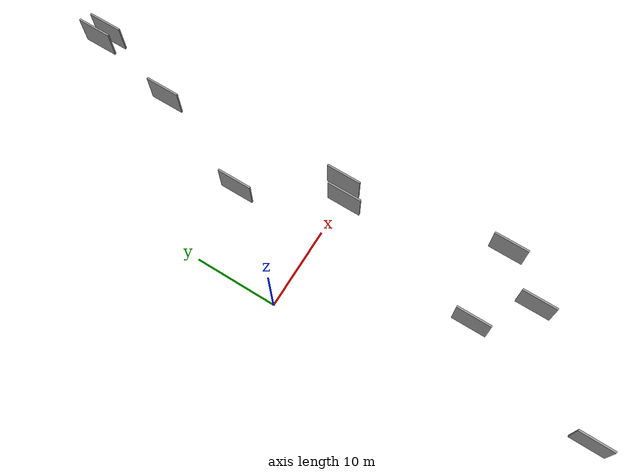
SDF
<sdf version="1.6">
 <world name="default">
  <scene>
   <sky><clouds><speed>12</speed></clouds></sky>
   <ambient>0.4 0.4 0.4 1</ambient>
   <background>0.7 0.7 0.7 1</background>
   <shadows>1</shadows>
  </scene>
  <gravity>0 0 -9.8066</gravity>
  <magnetic_field>6e-06 2.3e-05 -4.2e-05</magnetic_field>
  <physics default="0" name="default_physics" type="ode">
   <ode>
    <solver>
     <type>quick</type>
     <iters>10</iters>
     <sor>1.0</sor>
     <use_dynamic_moi_rescaling>0</use_dynamic_moi_rescaling>
    </solver>
    <constraints>
     <cfm>0</cfm>
     <erp>0.2</erp>
     <contact_max_correcting_vel>100</contact_max_correcting_vel>
     <contact_surface_layer>0.001</contact_surface_layer>
    </constraints>
   </ode>
   <max_step_size>0.004</max_step_size>
   <real_time_factor>1</real_time_factor>
   <real_time_update_rate>250</real_time_update_rate>
  </physics>
  <light name="sun" type="directional">
   <pose>0 0 10 0 0 0</pose>
   <diffuse>0.8 0.8 0.8 1</diffuse>
   <specular>0.2 0.2 0.2 1</specular>
   <attenuation>
    <range>1000</range>
    <constant>0.9</constant>
    <linear>0.01</linear>
    <quadratic>0.001</quadratic>
   </attenuation>
   <direction>-0.5 0.1 -0.9</direction>
  </light>
  <model name="grey_wall_1">
   <static>1</static>
   <pose>12.3638 -1.3330 5.0 0.000000 0.000000 1.570796</pose>
   <link name="link">
    <pose>0 0 2.00 0 0 0</pose>
    <collision name="collision"><geometry><box><size>4.00 0.2 4.00</size></box></geometry></collision>
    <visual name="visual">
     <cast_shadows>0</cast_shadows>
     <geometry><box><size>4.00 0.2 4.00</size></box></geometry>
     <material>
      <script>
       <uri>model://grey_wall/materials/scripts</uri>
       <uri>model://grey_wall/materials/textures</uri>
       <name>vrc/grey_wall</name>
      </script>
     </material>
    </visual>
   </link>
  </model>
  <model name="grey_wall_2">
   <static>1</static>
   <pose>7.6576 -19.2959 5.0 0.000000 0.000000 1.570796</pose>
   <link name="link">
    <pose>0 0 2.00 0 0 0</pose>
    <collision name="collision"><geometry><box><size>4.00 0.2 4.00</size></box></geometry></collision>
    <visual name="visual">
     <cast_shadows>0</cast_shadows>
     <geometry><box><size>4.00 0.2 4.00</size></box></geometry>
     <material>
      <script>
       <uri>model://grey_wall/materials/scripts</uri>
       <uri>model://grey_wall/materials/textures</uri>
       <name>vrc/grey_wall</name>
      </script>
     </material>
    </visual>
   </link>
  </model>
  <model name="grey_wall_3">
   <static>1</static>
   <pose>16.6318 -18.8512 5.0 0.000000 0.000000 1.570796</pose>
   <link name="link">
    <pose>0 0 2.00 0 0 0</pose>
    <collision name="collision"><geometry><box><size>4.00 0.2 4.00</size></box></geometry></collision>
    <visual name="visual">
     <cast_shadows>0</cast_shadows>
     <geometry><box><size>4.00 0.2 4.00</size></box></geometry>
     <material>
      <script>
       <uri>model://grey_wall/materials/scripts</uri>
       <uri>model://grey_wall/materials/textures</uri>
       <name>vrc/grey_wall</name>
      </script>
     </material>
    </visual>
   </link>
  </model>
  <model name="grey_wall_4">
   <static>1</static>
   <pose>14.0592 -0.2345 5.0 0.000000 0.000000 1.570796</pose>
   <link name="link">
    <pose>0 0 2.00 0 0 0</pose>
    <collision name="collision"><geometry><box><size>4.00 0.2 4.00</size></box></geometry></collision>
    <visual name="visual">
     <cast_shadows>0</cast_shadows>
     <geometry><box><size>4.00 0.2 4.00</size></box></geometry>
     <material>
      <script>
       <uri>model://grey_wall/materials/scripts</uri>
       <uri>model://grey_wall/materials/textures</uri>
       <name>vrc/grey_wall</name>
      </script>
     </material>
    </visual>
   </link>
  </model>
  <model name="grey_wall_5">
   <static>1</static>
   <pose>7.4910 9.3026 5.0 0.000000 0.000000 1.570796</pose>
   <link name="link">
    <pose>0 0 2.00 0 0 0</pose>
    <collision name="collision"><geometry><box><size>4.00 0.2 4.00</size></box></geometry></collision>
    <visual name="visual">
     <cast_shadows>0</cast_shadows>
     <geometry><box><size>4.00 0.2 4.00</size></box></geometry>
     <material>
      <script>
       <uri>model://grey_wall/materials/scripts</uri>
       <uri>model://grey_wall/materials/textures</uri>
       <name>vrc/grey_wall</name>
      </script>
     </material>
    </visual>
   </link>
  </model>
  <model name="grey_wall_6">
   <static>1</static>
   <pose>3.0965 -34.9653 5.0 0.000000 0.000000 1.570796</pose>
   <link name="link">
    <pose>0 0 2.00 0 0 0</pose>
    <collision name="collision"><geometry><box><size>4.00 0.2 4.00</size></box></geometry></collision>
    <visual name="visual">
     <cast_shadows>0</cast_shadows>
     <geometry><box><size>4.00 0.2 4.00</size></box></geometry>
     <material>
      <script>
       <uri>model://grey_wall/materials/scripts</uri>
       <uri>model://grey_wall/materials/textures</uri>
       <name>vrc/grey_wall</name>
      </script>
     </material>
    </visual>
   </link>
  </model>
  <model name="grey_wall_7">
   <static>1</static>
   <pose>15.8803 32.4931 5.0 0.000000 0.000000 1.570796</pose>
   <link name="link">
    <pose>0 0 2.00 0 0 0</pose>
    <collision name="collision"><geometry><box><size>4.00 0.2 4.00</size></box></geometry></collision>
    <visual name="visual">
     <cast_shadows>0</cast_shadows>
     <geometry><box><size>4.00 0.2 4.00</size></box></geometry>
     <material>
      <script>
       <uri>model://grey_wall/materials/scripts</uri>
       <uri>model://grey_wall/materials/textures</uri>
       <name>vrc/grey_wall</name>
      </script>
     </material>
    </visual>
   </link>
  </model>
  <model name="grey_wall_8">
   <static>1</static>
   <pose>14.6415 33.0940 5.0 0.000000 0.000000 1.570796</pose>
   <link name="link">
    <pose>0 0 2.00 0 0 0</pose>
    <collision name="collision"><geometry><box><size>4.00 0.2 4.00</size></box></geometry></collision>
    <visual name="visual">
     <cast_shadows>0</cast_shadows>
     <geometry><box><size>4.00 0.2 4.00</size></box></geometry>
     <material>
      <script>
       <uri>model://grey_wall/materials/scripts</uri>
       <uri>model://grey_wall/materials/textures</uri>
       <name>vrc/grey_wall</name>
      </script>
     </material>
    </visual>
   </link>
  </model>
  <model name="grey_wall_9">
   <static>1</static>
   <pose>12.5082 22.1647 5.0 0.000000 0.000000 1.570796</pose>
   <link name="link">
    <pose>0 0 2.00 0 0 0</pose>
    <collision name="collision"><geometry><box><size>4.00 0.2 4.00</size></box></geometry></collision>
    <visual name="visual">
     <cast_shadows>0</cast_shadows>
     <geometry><box><size>4.00 0.2 4.00</size></box></geometry>
     <material>
      <script>
       <uri>model://grey_wall/materials/scripts</uri>
       <uri>model://grey_wall/materials/textures</uri>
       <name>vrc/grey_wall</name>
      </script>
     </material>
    </visual>
   </link>
  </model>
  <model name="grey_wall_10">
   <static>1</static>
   <pose>12.7114 -24.0915 5.0 0.000000 0.000000 1.570796</pose>
   <link name="link">
    <pose>0 0 2.00 0 0 0</pose>
    <collision name="collision"><geometry><box><size>4.00 0.2 4.00</size></box></geometry></collision>
    <visual name="visual">
     <cast_shadows>0</cast_shadows>
     <geometry><box><size>4.00 0.2 4.00</size></box></geometry>
     <material>
      <script>
       <uri>model://grey_wall/materials/scripts</uri>
       <uri>model://grey_wall/materials/textures</uri>
       <name>vrc/grey_wall</name>
      </script>
     </material>
    </visual>
   </link>
  </model>
 </world>
</sdf>
